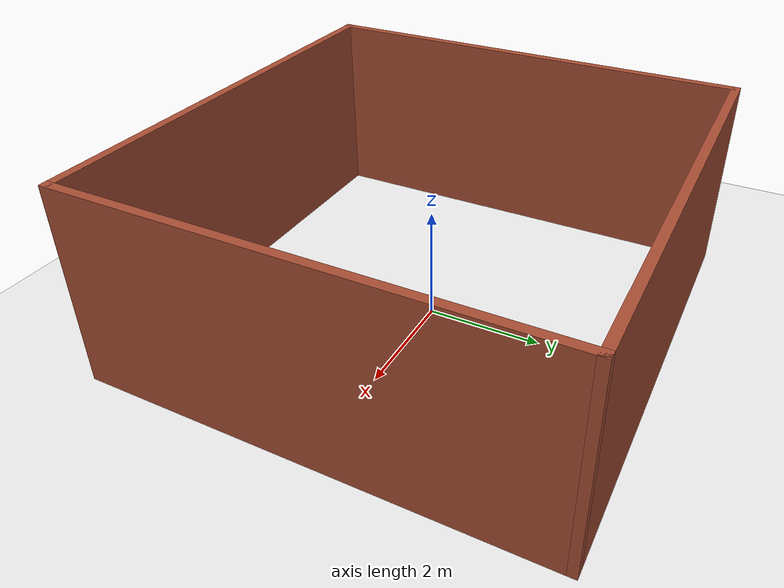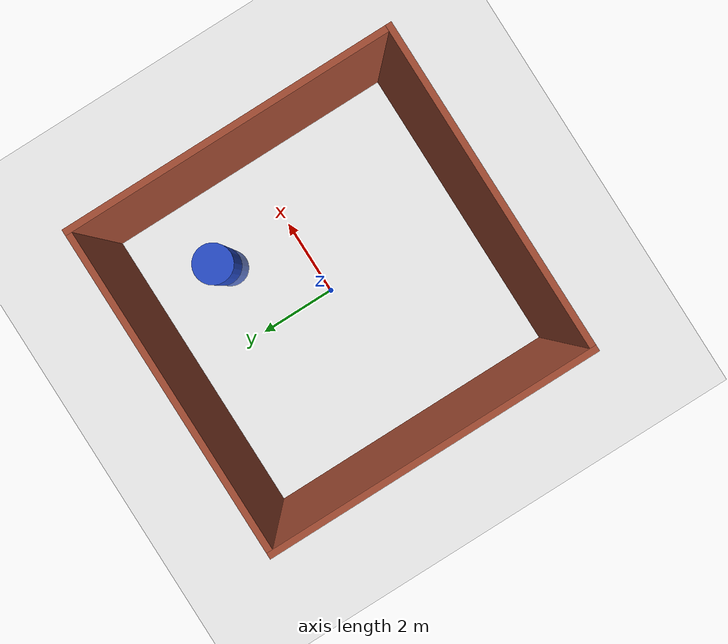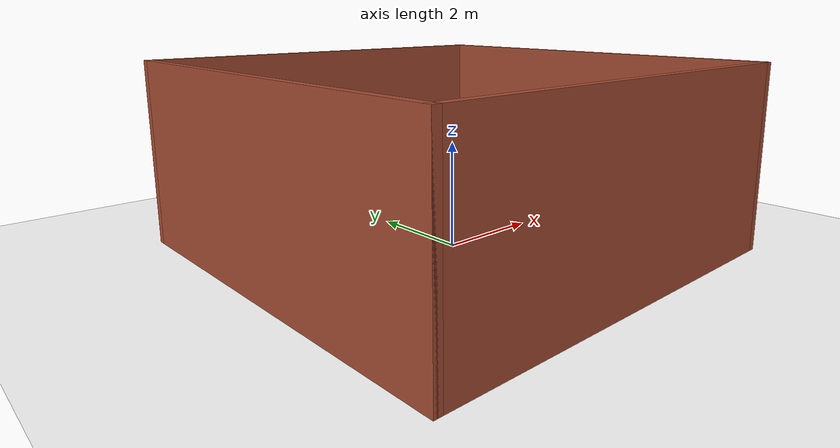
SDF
<?xml version="1.0" ?>
<sdf version="1.4">
  <world name="default">
    <include>
      <uri>model://ground_plane</uri>
    </include>
    <include>
      <uri>model://sun</uri>
    </include>

    <!-- Only require one ROS interface plugin per world, as any other plugin can connect a Gazebo
        topic to a ROS topic (or vise versa). -->
    <plugin name="ros_interface_plugin" filename="librotors_gazebo_ros_interface_plugin.so"></plugin>
    <!-- Rl Interface Plugin -->
    <plugin name="ros_rl_interface_plugin" filename="librl_gazebo_interface_plugin.so"></plugin>

    <spherical_coordinates>
      <surface_model>EARTH_WGS84</surface_model>
      <latitude_deg>47.3667</latitude_deg>
      <longitude_deg>8.5500</longitude_deg>
      <elevation>500.0</elevation>
      <heading_deg>0</heading_deg>
    </spherical_coordinates>
    <physics type='ode'>
      <ode>
        <solver>
          <type>quick</type>
          <iters>1000</iters>
          <sor>1.3</sor>
        </solver>
        <constraints>
          <cfm>0</cfm>
          <erp>0.2</erp>
          <contact_max_correcting_vel>100</contact_max_correcting_vel>
          <contact_surface_layer>0.001</contact_surface_layer>
        </constraints>
      </ode>
      <max_step_size>0.01</max_step_size>
      <real_time_factor>1</real_time_factor>
      <real_time_update_rate>100</real_time_update_rate>
      <gravity>0 0 -9.8</gravity>
    </physics>

    <include>
      <pose>2.0 2.0 0 0 0 0</pose>
      <uri>model://obstacle_cylinder_big</uri>
    </include>

    <include>
      <pose>0 0.0 0 0 0 0</pose>
      <uri>model://goal</uri>
    </include>

    <include>
      <pose>0 0 0 0 0 0</pose>
      <uri>model://house_3</uri>
    </include>

  </world>
</sdf>

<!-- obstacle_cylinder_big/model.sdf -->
<sdf version="1.4">
  <model name="obstacle_cylinder_big">
    <gravity>0</gravity>
    <static>0</static>
    <link name="sensors_link">
        <collision name="cylinder_collision">
          <geometry>
		  <cylinder>
		    <radius>0.5</radius>
		    <length>3.0</length>
		  </cylinder>
          </geometry>
      <surface>
        <friction>
          <ode>
            <mu>0.99</mu>
            <mu2>0.99</mu2>
          </ode>
        </friction>
      </surface>
        </collision>

        <visual name="visual">
          <geometry>
		  <cylinder>
		    <radius>0.5</radius>
		    <length>3.0</length>
		  </cylinder>
          </geometry>
        <material>
          <script>
            <name>Gazebo/blue</name>
            <uri>file://media/materials/scripts/gazebo.material</uri>
          </script>
          <ambient>0.3 0.3 0.3 1</ambient>
          <diffuse>0.2 0.7 0.7 1</diffuse>
          <specular>0.01 0.01 0.01 1</specular>
          <emissive>0.2 0.7 0 1</emissive>
          <shader type='vertex'>
            <normal_map>__default__</normal_map>
          </shader>
        </material>
        <pose frame=''>0 0 0 0 -0 0</pose>
        <cast_shadows>1</cast_shadows>
        <transparency>0.0</transparency>
        </visual>
    </link>
      <plugin name="model_push" filename="libgazebo_moving_obstacle.so">
        <robotNamespace>/</robotNamespace>
      </plugin>
  </model>
</sdf>

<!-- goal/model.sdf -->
<sdf version='1.5'>
  <model name='goal'>
    <link name='link'>
      <pose frame=''>0 0 0 0 -0 0</pose>
      <inertial>
        <mass>1</mass>
        <inertia>
          <ixx>0.145833</ixx>
          <ixy>0</ixy>
          <ixz>0</ixz>
          <iyy>0.145833</iyy>
          <iyz>0</iyz>
          <izz>0.125</izz>
        </inertia>
        <pose frame=''>0 0 0 0 -0 0</pose>
      </inertial>
      <self_collide>0</self_collide>
      <kinematic>0</kinematic>
      <gravity>0</gravity>
      <visual name='visual'>
        <geometry>
          <cylinder>
            <radius>0.07</radius>
            <length>0.35</length>
          </cylinder>
        </geometry>
        <material>
          <script>
            <name>Gazebo/blue</name>
            <uri>file://media/materials/scripts/gazebo.material</uri>
          </script>
          <ambient>0.3 0.3 0.3 1</ambient>
          <diffuse>0.7 0.7 0.7 1</diffuse>
          <specular>0.01 0.01 0.01 1</specular>
          <emissive>0.6 0 0.6 1</emissive>
          <shader type='vertex'>
            <normal_map>__default__</normal_map>
          </shader>
        </material>
        <pose frame=''>0 0 0 0 -0 0</pose>
        <cast_shadows>1</cast_shadows>
        <transparency>0</transparency>
      </visual>
    </link>
    <static>0</static>
    <allow_auto_disable>0</allow_auto_disable>
  </model>
</sdf>

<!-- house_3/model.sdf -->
<sdf version='1.5'>
  <model name='house_3'>
    <link name='Wall_13'>
      <pose frame=''>-3.925 0 0 0 0 -1.5708</pose>
      <self_collide>0</self_collide>
      <kinematic>0</kinematic>
      <visual name='Wall_13_Visual'>
        <pose frame=''>0 0 1.75 0 -0 0</pose>
        <geometry>
          <box>
            <size>8 0.15 3.5</size>
          </box>
        </geometry>
        <material>
          <script>
            <uri>file://media/materials/scripts/gazebo.material</uri>
            <name>Gazebo/Bricks</name>
          </script>
          <ambient>1 1 1 1</ambient>
          <diffuse>1 1 1 1</diffuse>
          <specular>0.2 0.2 0.2 1</specular>
          <emissive>0 0 0 1</emissive>
          <shader type='pixel'/>
        </material>
        <cast_shadows>1</cast_shadows>
        <transparency>0</transparency>
      </visual>
      <collision name='Wall_13_Collision'>
        <laser_retro>0</laser_retro>
        <max_contacts>10</max_contacts>
        <pose frame=''>0 0 1.75 0 -0 0</pose>
        <geometry>
          <box>
            <size>8 0.15 3.5</size>
          </box>
        </geometry>
        <surface>
          <friction>
            <ode>
              <mu>1</mu>
              <mu2>1</mu2>
              <fdir1>0 0 0</fdir1>
              <slip1>0</slip1>
              <slip2>0</slip2>
            </ode>
          </friction>
          <bounce>
            <restitution_coefficient>0</restitution_coefficient>
            <threshold>1e+06</threshold>
          </bounce>
          <contact>
            <collide_without_contact>0</collide_without_contact>
            <collide_without_contact_bitmask>1</collide_without_contact_bitmask>
            <collide_bitmask>1</collide_bitmask>
            <ode>
              <soft_cfm>0</soft_cfm>
              <soft_erp>0.2</soft_erp>
              <kp>1e+13</kp>
              <kd>1</kd>
              <max_vel>0.01</max_vel>
              <min_depth>0</min_depth>
            </ode>
            <bullet>
              <split_impulse>1</split_impulse>
              <split_impulse_penetration_threshold>-0.01</split_impulse_penetration_threshold>
              <soft_cfm>0</soft_cfm>
              <soft_erp>0.2</soft_erp>
              <kp>1e+13</kp>
              <kd>1</kd>
            </bullet>
          </contact>
        </surface>
      </collision>
    </link>
    <link name='Wall_14'>
      <pose frame=''>0 -3.925 0 0 -0 0</pose>
      <self_collide>0</self_collide>
      <kinematic>0</kinematic>
      <visual name='Wall_14_Visual'>
        <pose frame=''>0 0 1.75 0 -0 0</pose>
        <geometry>
          <box>
            <size>8 0.15 3.5</size>
          </box>
        </geometry>
        <material>
          <script>
            <uri>file://media/materials/scripts/gazebo.material</uri>
            <name>Gazebo/Bricks</name>
          </script>
          <ambient>1 1 1 1</ambient>
          <diffuse>1 1 1 1</diffuse>
          <specular>0.2 0.2 0.2 1</specular>
          <emissive>0 0 0 1</emissive>
          <shader type='pixel'/>
        </material>
        <cast_shadows>1</cast_shadows>
        <transparency>0</transparency>
      </visual>
      <collision name='Wall_14_Collision'>
        <laser_retro>0</laser_retro>
        <max_contacts>10</max_contacts>
        <pose frame=''>0 0 1.75 0 -0 0</pose>
        <geometry>
          <box>
            <size>8 0.15 3.5</size>
          </box>
        </geometry>
        <surface>
          <friction>
            <ode>
              <mu>1</mu>
              <mu2>1</mu2>
              <fdir1>0 0 0</fdir1>
              <slip1>0</slip1>
              <slip2>0</slip2>
            </ode>
          </friction>
          <bounce>
            <restitution_coefficient>0</restitution_coefficient>
            <threshold>1e+06</threshold>
          </bounce>
          <contact>
            <collide_without_contact>0</collide_without_contact>
            <collide_without_contact_bitmask>1</collide_without_contact_bitmask>
            <collide_bitmask>1</collide_bitmask>
            <ode>
              <soft_cfm>0</soft_cfm>
              <soft_erp>0.2</soft_erp>
              <kp>1e+13</kp>
              <kd>1</kd>
              <max_vel>0.01</max_vel>
              <min_depth>0</min_depth>
            </ode>
            <bullet>
              <split_impulse>1</split_impulse>
              <split_impulse_penetration_threshold>-0.01</split_impulse_penetration_threshold>
              <soft_cfm>0</soft_cfm>
              <soft_erp>0.2</soft_erp>
              <kp>1e+13</kp>
              <kd>1</kd>
            </bullet>
          </contact>
        </surface>
      </collision>
    </link>
    <link name='Wall_15'>
      <pose frame=''>3.925 0 0 0 -0 1.5708</pose>
      <self_collide>0</self_collide>
      <kinematic>0</kinematic>
      <visual name='Wall_15_Visual'>
        <pose frame=''>0 0 1.75 0 -0 0</pose>
        <geometry>
          <box>
            <size>8 0.15 3.5</size>
          </box>
        </geometry>
        <material>
          <script>
            <uri>file://media/materials/scripts/gazebo.material</uri>
            <name>Gazebo/Bricks</name>
          </script>
          <ambient>1 1 1 1</ambient>
          <diffuse>1 1 1 1</diffuse>
          <specular>0.2 0.2 0.2 1</specular>
          <emissive>0 0 0 1</emissive>
          <shader type='pixel'/>
        </material>
        <cast_shadows>1</cast_shadows>
        <transparency>0</transparency>
      </visual>
      <collision name='Wall_15_Collision'>
        <laser_retro>0</laser_retro>
        <max_contacts>10</max_contacts>
        <pose frame=''>0 0 1.75 0 -0 0</pose>
        <geometry>
          <box>
            <size>8 0.15 3.5</size>
          </box>
        </geometry>
        <surface>
          <friction>
            <ode>
              <mu>1</mu>
              <mu2>1</mu2>
              <fdir1>0 0 0</fdir1>
              <slip1>0</slip1>
              <slip2>0</slip2>
            </ode>
          </friction>
          <bounce>
            <restitution_coefficient>0</restitution_coefficient>
            <threshold>1e+06</threshold>
          </bounce>
          <contact>
            <collide_without_contact>0</collide_without_contact>
            <collide_without_contact_bitmask>1</collide_without_contact_bitmask>
            <collide_bitmask>1</collide_bitmask>
            <ode>
              <soft_cfm>0</soft_cfm>
              <soft_erp>0.2</soft_erp>
              <kp>1e+13</kp>
              <kd>1</kd>
              <max_vel>0.01</max_vel>
              <min_depth>0</min_depth>
            </ode>
            <bullet>
              <split_impulse>1</split_impulse>
              <split_impulse_penetration_threshold>-0.01</split_impulse_penetration_threshold>
              <soft_cfm>0</soft_cfm>
              <soft_erp>0.2</soft_erp>
              <kp>1e+13</kp>
              <kd>1</kd>
            </bullet>
          </contact>
        </surface>
      </collision>
    </link>
    <link name='Wall_16'>
      <pose frame=''>0 3.925 0 0 -0 3.14159</pose>
      <self_collide>0</self_collide>
      <kinematic>0</kinematic>
      <visual name='Wall_16_Visual'>
        <pose frame=''>0 0 1.75 0 -0 0</pose>
        <geometry>
          <box>
            <size>8 0.15 3.5</size>
          </box>
        </geometry>
        <material>
          <script>
            <uri>file://media/materials/scripts/gazebo.material</uri>
            <name>Gazebo/Bricks</name>
          </script>
          <ambient>1 1 1 1</ambient>
          <diffuse>1 1 1 1</diffuse>
          <specular>0.2 0.2 0.2 1</specular>
          <emissive>0 0 0 1</emissive>
          <shader type='pixel'/>
        </material>
        <cast_shadows>1</cast_shadows>
        <transparency>0</transparency>
      </visual>
      <collision name='Wall_16_Collision'>
        <laser_retro>0</laser_retro>
        <max_contacts>10</max_contacts>
        <pose frame=''>0 0 1.75 0 -0 0</pose>
        <geometry>
          <box>
            <size>8 0.15 3.5</size>
          </box>
        </geometry>
        <surface>
          <friction>
            <ode>
              <mu>1</mu>
              <mu2>1</mu2>
              <fdir1>0 0 0</fdir1>
              <slip1>0</slip1>
              <slip2>0</slip2>
            </ode>
          </friction>
          <bounce>
            <restitution_coefficient>0</restitution_coefficient>
            <threshold>1e+06</threshold>
          </bounce>
          <contact>
            <collide_without_contact>0</collide_without_contact>
            <collide_without_contact_bitmask>1</collide_without_contact_bitmask>
            <collide_bitmask>1</collide_bitmask>
            <ode>
              <soft_cfm>0</soft_cfm>
              <soft_erp>0.2</soft_erp>
              <kp>1e+13</kp>
              <kd>1</kd>
              <max_vel>0.01</max_vel>
              <min_depth>0</min_depth>
            </ode>
            <bullet>
              <split_impulse>1</split_impulse>
              <split_impulse_penetration_threshold>-0.01</split_impulse_penetration_threshold>
              <soft_cfm>0</soft_cfm>
              <soft_erp>0.2</soft_erp>
              <kp>1e+13</kp>
              <kd>1</kd>
            </bullet>
          </contact>
        </surface>
      </collision>
    </link>
    <static>1</static>
    <allow_auto_disable>1</allow_auto_disable>
  </model>
</sdf>
